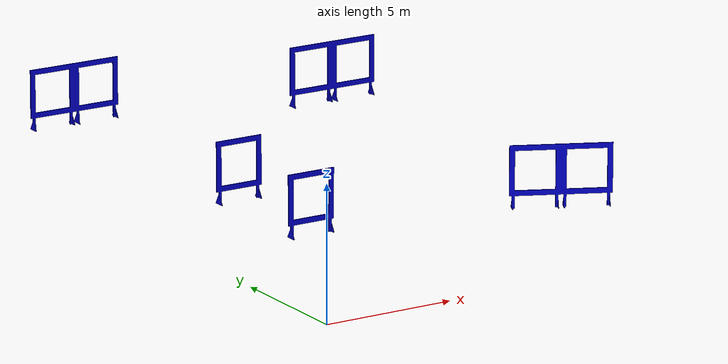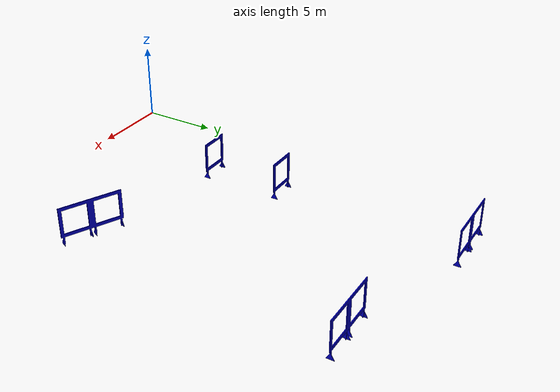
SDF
<?xml version="1.0" ?>
<sdf version="1.9">
  <model name="gate_d2">
    <static>true</static>
    <link name="link">
      <inertial>
        <mass>5.0</mass>
        <inertia>
          <ixx>9.108e-05</ixx>
          <ixy>0</ixy>
          <ixz>0</ixz>
          <iyy>2.51e-06</iyy>
          <iyz>0</iyz>
          <izz>8.931e-05</izz>
        </inertia>
      </inertial>
      <visual name="visual">
        <pose>0 0 0 0 0 0</pose>
        <geometry>
          <mesh>
            <uri>model://gate_d2/meshes/gate_d2.stl</uri>
          </mesh>
        </geometry>
        <material>
            <ambient>0.0 0.0 0.5 1</ambient>
            <diffuse>0.0 0.0 0.8 1</diffuse>
            <specular>0.1 0.1 0.1 1</specular>
        </material>
      </visual>

      <collision name="collision">
        <geometry>
          <mesh>
            <uri>model://gate_d2/meshes/gate_d2.stl</uri>
          </mesh>
        </geometry>
      </collision>
    </link>
  </model>
</sdf>
